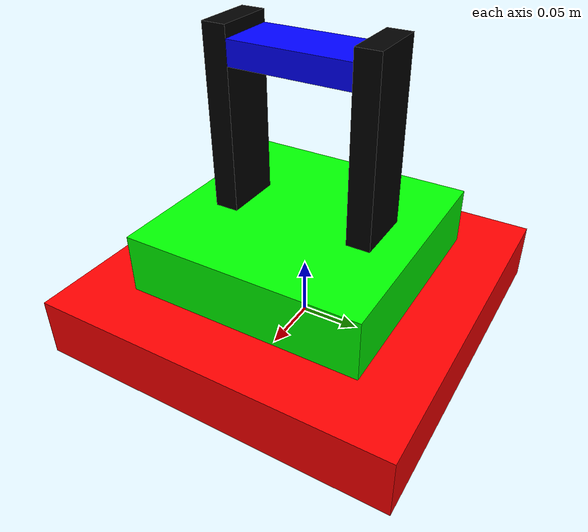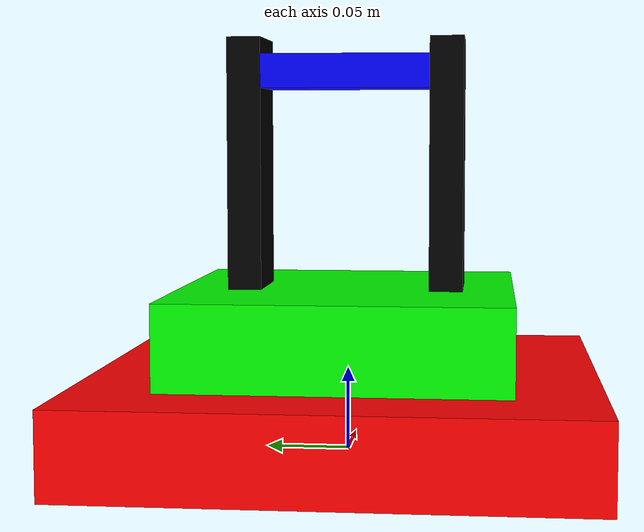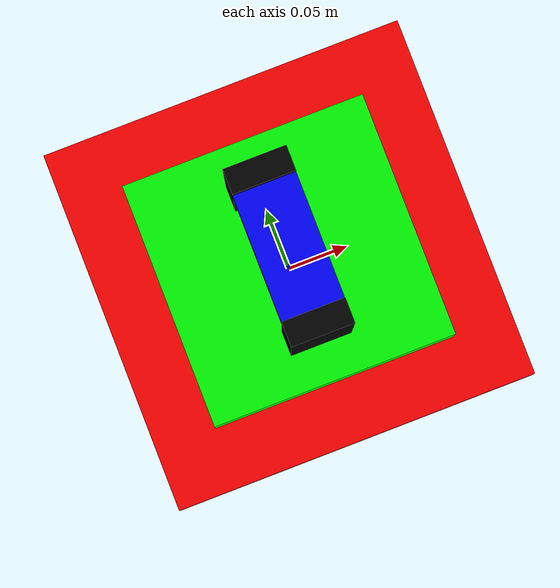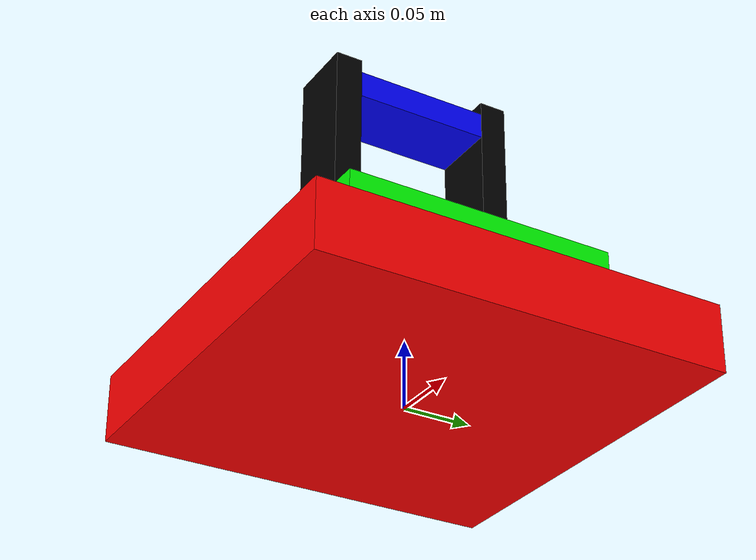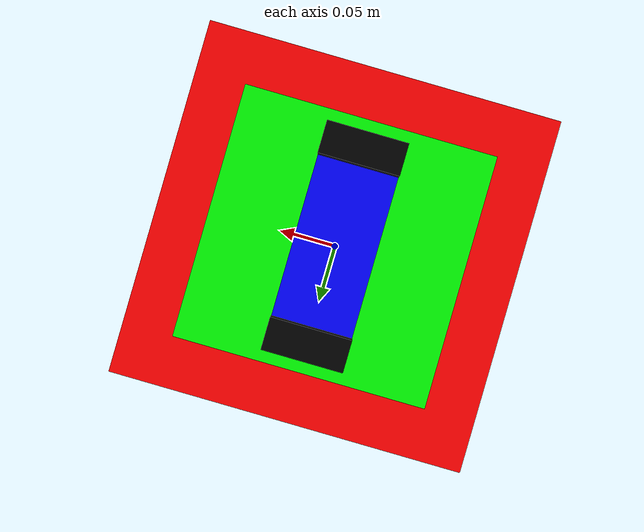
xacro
<?xml version="1.0"?>
<robot xmlns:xacro="http://www.ros.org/wiki/xacro" name="skywarden">

    <xacro:include filename="./materials.xacro" />
    <xacro:include filename="./inertials.xacro" />
    <xacro:include filename="./body.xacro" />

    <xacro:include filename="./gz_plugins.xacro" />
    <xacro:include filename="./gz.ros2control.xacro" />
</robot>

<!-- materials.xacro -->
<robot xmlns:xacro="http://www.ros.org/wiki/xacro">

    <material name="black">
        <color rgba="0 0 0 1.0"/>
    </material>

    <material name="white">
        <color rgba="1 1 1 1.0"/>
    </material>

    <material name="red">
        <color rgba="1 0 0 1.0"/>
    </material>

    <material name="green">
        <color rgba="0 1 0 1.0"/>
    </material>

    <material name="blue">
        <color rgba="0 0 1 1.0"/>
    </material>

</robot>

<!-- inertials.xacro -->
<robot xmlns:xacro="http://www.ros.org/wiki/xacro">

    <xacro:macro name="box_inertial" params="m lx ly lz o_xyz o_rpy">
        <inertial>
            <origin xyz="${o_xyz}" rpy="${o_rpy}"/>
            <mass value="${m}"/>
            <inertia ixx="${m/12 * (ly**2 + lz**2)}" ixy="0.0" ixz="0.0" iyy="${m/12 * (lx**2 + lz**2)}" iyz="0.0" izz="${m/12 * (ly**2 + lx**2)}"/>
        </inertial>
    </xacro:macro>

</robot>

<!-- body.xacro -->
<robot xmlns:xacro="http://www.ros.org/wiki/xacro">
    <!-- SPECS -->
    <xacro:property name="base_lx" value="0.3" />
    <xacro:property name="base_ly" value="0.3" />
    <xacro:property name="base_lz" value="0.05" />
    <xacro:property name="base_mass" value="0.8" />

    <xacro:property name="yaw_lx" value="0.2" />
    <xacro:property name="yaw_ly" value="0.2" />
    <xacro:property name="yaw_lz" value="0.05" />
    <xacro:property name="yaw_mass" value="0.2" />

    <xacro:property name="stand_lx" value="0.05" />
    <xacro:property name="stand_ly" value="0.02" />
    <xacro:property name="stand_lz" value="0.15" />
    <xacro:property name="stand_mass" value="0.1" />

    <xacro:property name="pitch_lx" value="0.05" />
    <xacro:property name="pitch_ly" value="0.1" />
    <xacro:property name="pitch_lz" value="0.02" />
    <xacro:property name="pitch_mass" value="0.1" />
    <!-- END_SPECS -->

    <link name="footprint" />

    <link name="base_link">

        <visual>
            <origin xyz="0 0 0" rpy="0 0 0" />
            <geometry>
                <box size="${base_lx} ${base_ly} ${base_lz}" />
            </geometry>
            <material name="red" />
        </visual>

        <collision>
            <origin xyz="0 0 0" rpy="0 0 0" />
            <geometry>
                <box size="${base_lx} ${base_ly} ${base_lz}" />
            </geometry>
        </collision>

        <xacro:box_inertial m="${base_mass}" lx="${base_lx}" ly="${base_ly}" lz="${base_lz}"
            o_xyz="0 0 0" o_rpy="0 0 0" />

    </link>

    <joint name="base_footprint_joint" type="fixed">
        <origin xyz="0 0 ${base_lz / 2}" rpy="0 0 0" />
        <parent link="footprint" />
        <child link="base_link" />
    </joint>

    <link name="yaw_link">

        <visual>
            <origin xyz="0 0 ${yaw_lz / 2}" rpy="0 0 0" />
            <geometry>
                <box size="${yaw_lx} ${yaw_ly} ${yaw_lz}" />
            </geometry>
            <material name="green" />
        </visual>

        <collision>
            <origin xyz="0 0 ${yaw_lz / 2}" rpy="0 0 0" />
            <geometry>
                <box size="${yaw_lx} ${yaw_ly} ${yaw_lz}" />
            </geometry>
        </collision>

        <xacro:box_inertial m="${yaw_mass}" lx="${yaw_lx}" ly="${yaw_ly}" lz="${yaw_lz}"
            o_xyz="0 0 ${yaw_lz / 2}" o_rpy="0 0 0" />

    </link>

    <joint name="yaw_base_joint" type="revolute">
        <origin xyz="0 0 ${base_lz / 2}" rpy="0 0 0" />
        <parent link="base_link" />
        <child link="yaw_link" />
        <axis xyz="0 0 1" />
        <limit lower="${-pi/2}" upper="${pi/2}" effort="30" velocity="${pi}" /> <!-- Nema 17 motor
        have holding toruqe of 0.3 N*m-->
    </joint>

    <!-- Stand -->
    <link name="lstand_link">

        <visual>
            <origin xyz="0 0 ${stand_lz / 2}" rpy="0 0 0" />
            <geometry>
                <box size="${stand_lx} ${stand_ly} ${stand_lz}" />
            </geometry>
            <material name="black" />
        </visual>

        <collision>
            <origin xyz="0 0 ${stand_lz / 2}" rpy="0 0 0" />
            <geometry>
                <box size="${stand_lx} ${stand_ly} ${stand_lz}" />
            </geometry>
        </collision>

        <xacro:box_inertial m="${stand_mass}" lx="${stand_lx}" ly="${stand_ly}" lz="${stand_lz}"
            o_xyz="0 0 ${stand_lz / 2}" o_rpy="0 0 0" />

    </link>

    <joint name="lstand_yaw_joint" type="fixed">
        <origin xyz="0 ${(pitch_ly + stand_ly) / 2} ${yaw_lz}" rpy="0 0 0" />
        <parent link="yaw_link" />
        <child link="lstand_link" />
    </joint>

    <link name="rstand_link">

        <visual>
            <origin xyz="0 0 ${stand_lz / 2}" rpy="0 0 0" />
            <geometry>
                <box size="${stand_lx} ${stand_ly} ${stand_lz}" />
            </geometry>
            <material name="black" />
        </visual>

        <collision>
            <origin xyz="0 0 ${stand_lz / 2}" rpy="0 0 0" />
            <geometry>
                <box size="${stand_lx} ${stand_ly} ${stand_lz}" />
            </geometry>
        </collision>

        <xacro:box_inertial m="${stand_mass}" lx="${stand_lx}" ly="${stand_ly}" lz="${stand_lz}"
            o_xyz="0 0 ${stand_lz / 2}" o_rpy="0 0 0" />
    </link>

    <joint name="rstand_yaw_joint" type="fixed">
        <origin xyz="0 -${(pitch_ly + stand_ly) / 2} ${yaw_lz}" rpy="0 0 0" />
        <parent link="yaw_link" />
        <child link="rstand_link" />
    </joint>

    <link name="pitch_link">

        <visual>
            <origin xyz="0 0 0" rpy="0 0 0" />
            <geometry>
                <box size="${pitch_lx} ${pitch_ly} ${pitch_lz}" />
            </geometry>
            <material name="blue" />
        </visual>

        <collision>
            <origin xyz="0 0 0" rpy="0 0 0" />
            <geometry>
                <box size="${pitch_lx} ${pitch_ly} ${pitch_lz}" />
            </geometry>
        </collision>

        <xacro:box_inertial m="${pitch_mass}" lx="${pitch_lx}" ly="${pitch_ly}" lz="${pitch_lz}"
            o_xyz="0 0 0" o_rpy="0 0 0" />
    </link>

    <joint name="pitch_base_joint" type="revolute">
        <origin xyz="0 -${pitch_ly / 2 + stand_ly / 2} ${pitch_lz / 2 + stand_lz * 0.8}" rpy="0 0 0" />
        <parent link="lstand_link" />
        <child link="pitch_link" />
        <axis xyz="0 1 0" />
        <limit lower="${-pi/2}" upper="${pi/2}" effort="30" velocity="${pi}" /> <!-- Nema 17 motor
        have holding toruqe of 0.3 N*m-->
    </joint>

</robot>
